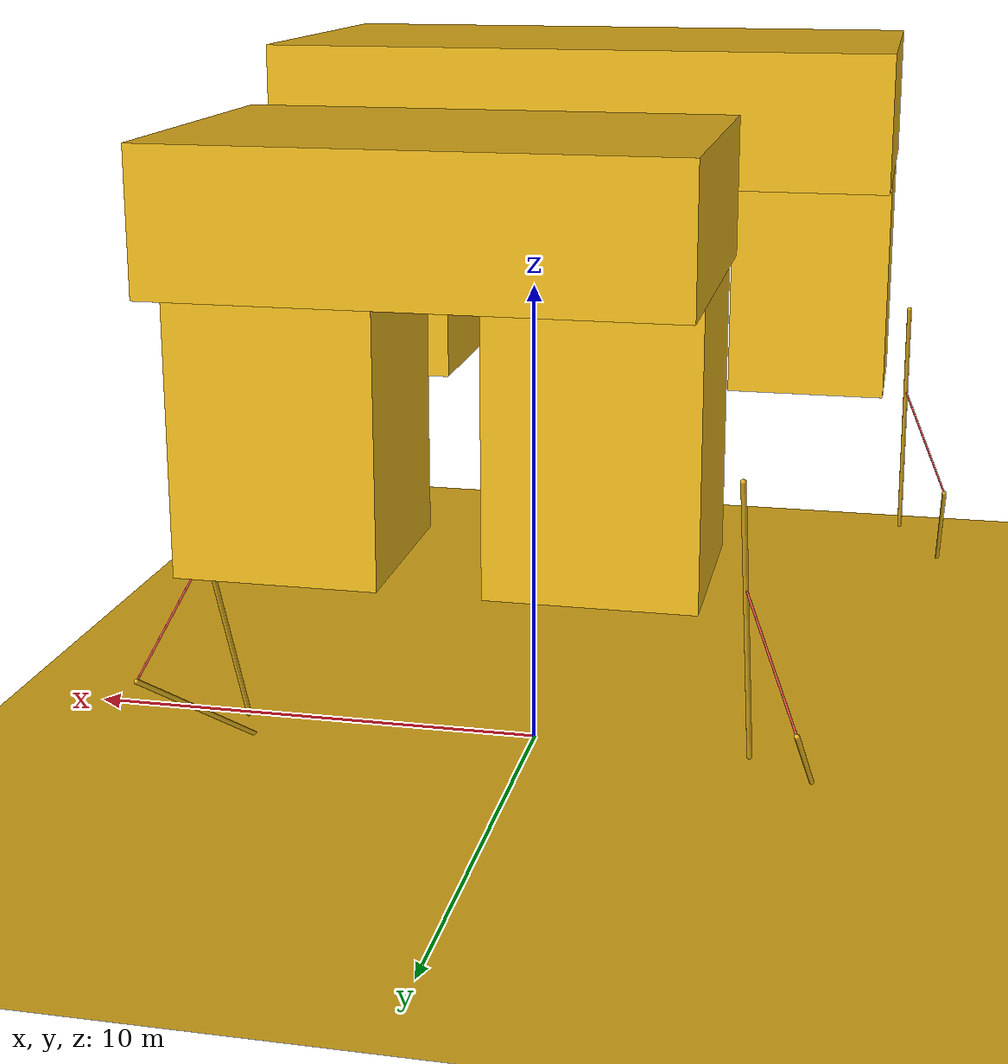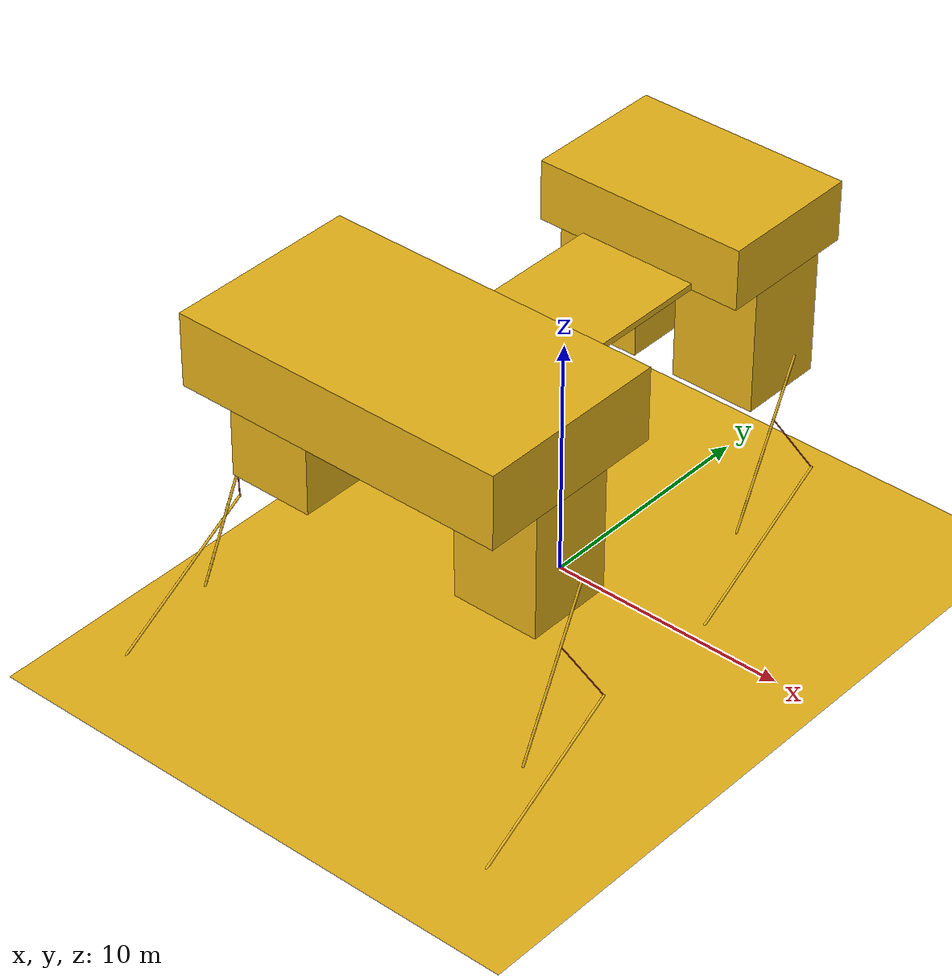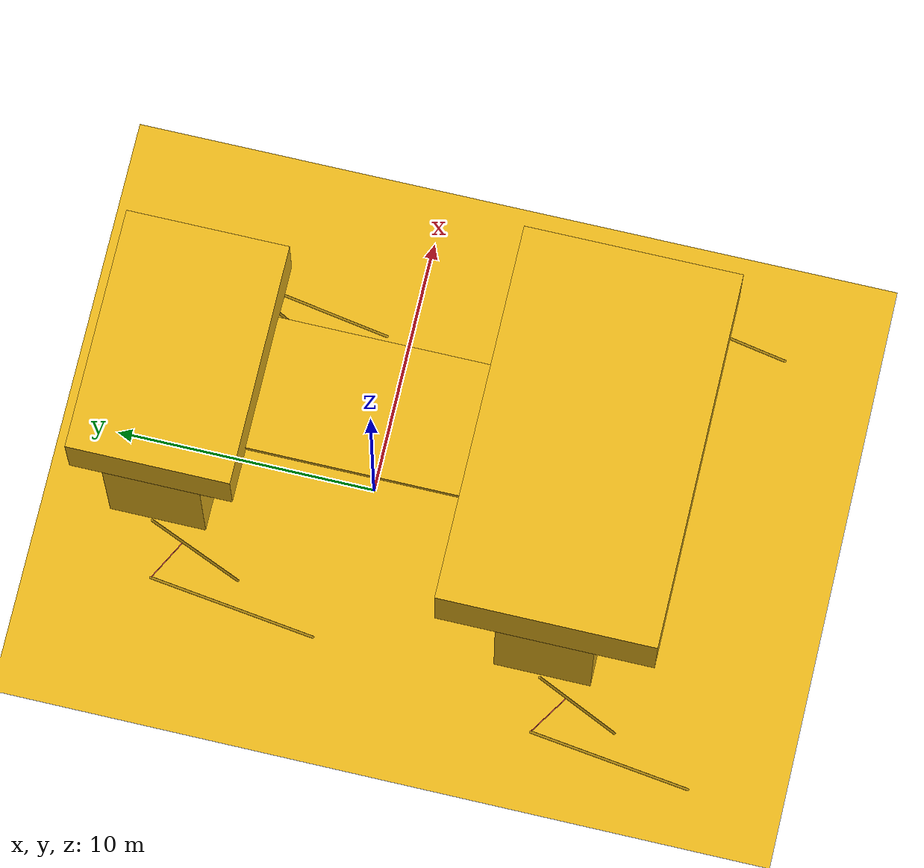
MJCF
<mujoco model="quadruped">
  <compiler angle="degree" coordinate="global" inertiafromgeom="true"/>
  <option gravity="0 0 -98.1"/>
  <default>
    <geom density="1" rgba=".9 .7 .1 1" size="0.05"/>
    <site rgba=".9 .9 .9 1" size="0.005" type="sphere"/>
    <joint axis="1 0 0" limited="true" range="-100 100" solimplimit="0.95 0.95 0.1" type="hinge"/>
    <tendon limited="true" range="0.25 1" rgba=".95 .3 .3 1" stiffness="4000" width="0.02"/>
  </default>
  <asset>
    <texture builtin="gradient" height="128" rgb1=".4 .6 .8" rgb2="0 0 0" type="skybox" width="128"/>
    <texture builtin="flat" height="1278" mark="cross" markrgb="1 1 1" name="texgeom" random="0.01" rgb1="0.8 0.6 0.4" rgb2="0.8 0.6 0.4" type="cube" width="127"/>
    <texture builtin="checker" height="512" name="texplane" rgb1=".2 .3 .4" rgb2=".1 0.15 0.2" type="2d" width="512"/>
    <material name="MatPlane" reflectance="0" texrepeat="1 1" texture="texplane" texuniform="true"/>
    <material name="geom" texture="texgeom" texuniform="true"/>
  </asset>
  <worldbody>
    <geom condim="3" material="MatPlane" name="floor" pos="0 0 0" size="50 50 .125" type="plane"/>
    <body name="torso">
      <geom mass="2500.00000" pos="0.00000 -8.00000 12.98238" size="7.00000 4.00000 1.50000" type="box"/>
      <geom mass="300.00000" pos="0.00000 0.00000 11.60738" size="2.50000 4.00000 0.12500" type="box" name="torso_geom"/>
      <geom mass="1500.00000" pos="0.00000 7.00000 12.73238" size="4.50000 3.00000 1.25000" type="box"/>
      <joint limited="false" name="gravity" type="free"/>
      <site name="sensor_torso" pos="0 0 11.48238"/>
      <body>
        <geom mass="0.067" pos="5.20000 -8.00000 8.95238" size="1.80000 1.80000 2.53000" type="box"/>
        <body>
          <geom fromto="7.51000 -8.00000 8.18238 7.51000 -10.95833 1.83823" type="capsule"/>
          <joint damping="0.2" name="shoulder_1" pos="7.51000 -8.00000 8.18238"/>
          <site name="s1_1" pos="7.51000 -9.05655 5.91661"/>
          <body>
            <geom fromto="8.56000 -7.97226 3.66399 8.56000 -15.22414 -0.77000" type="capsule"/>
            <joint damping="0.2" limited="true" pos="7.51000 -10.95833 1.83823" range="-60 0"/>
            <site name="s1_2" pos="8.56000 -7.97226 3.66399"/>
            <body pos="8.56000 -15.22414 -0.77000">
              <geom friction="1 0.005 0.0001" fromto="8.56000 -15.22414 -0.77000 8.56000 -15.42414 -1.17000" type="capsule"/>
              <site name="sensor_1" pos="8.56000 -15.22414 -0.77000"/>
            </body>
          </body>
        </body>
      </body>
      <body>
        <geom mass="0.067" pos="-5.20000 -8.00000 8.95238" size="1.80000 1.80000 2.53000" type="box"/>
        <body>
          <geom fromto="-7.51000 -8.00000 8.18238 -7.51000 -10.95833 1.83823" type="capsule"/>
          <joint damping="0.2" name="shoulder_2" pos="-7.51000 -8.00000 8.18238"/>
          <site name="s2_1" pos="-7.51000 -9.05655 5.91661"/>
          <body>
            <geom fromto="-8.56000 -7.97226 3.66399 -8.56000 -15.22414 -0.77000" type="capsule"/>
            <joint damping="0.2" limited="true" pos="-7.51000 -10.95833 1.83823" range="-60 0"/>
            <site name="s2_2" pos="-8.56000 -7.97226 3.66399"/>
            <body pos="-8.56000 -15.22414 -0.77000">
              <geom friction="1 0.005 0.0001" fromto="-8.56000 -15.22414 -0.77000 -8.56000 -15.42414 -1.17000" type="capsule"/>
              <site name="sensor_2" pos="-8.56000 -15.22414 -0.77000"/>
            </body>
          </body>
        </body>
      </body>
      <body>
        <geom mass="0.067" pos="2.70000 7.00000 8.95238" size="1.80000 1.80000 2.53000" type="box"/>
        <body>
          <geom fromto="5.01000 7.00000 8.18238 5.01000 4.04167 1.83823" type="capsule"/>
          <joint damping="0.2" name="shoulder_3" pos="5.01000 7.00000 8.18238"/>
          <site name="s3_1" pos="5.01000 5.94345 5.91661"/>
          <body>
            <geom fromto="6.06000 7.02774 3.66399 6.06000 -0.22414 -0.77000" type="capsule"/>
            <joint damping="0.2" limited="true" pos="5.01000 4.04167 1.83823" range="-60 0"/>
            <site name="s3_2" pos="6.06000 7.02774 3.66399"/>
            <body pos="6.06000 -0.22414 -0.77000">
              <geom friction="1 0.005 0.0001" fromto="6.06000 -0.22414 -0.77000 6.06000 -0.42414 -1.17000" type="capsule"/>
              <site name="sensor_3" pos="6.06000 -0.22414 -0.77000"/>
            </body>
          </body>
        </body>
      </body>
      <body>
        <geom mass="0.067" pos="-2.70000 7.00000 8.95238" size="1.80000 1.80000 2.53000" type="box"/>
        <body>
          <geom fromto="-5.01000 7.00000 8.18238 -5.01000 4.04167 1.83823" type="capsule"/>
          <joint damping="0.2" name="shoulder_4" pos="-5.01000 7.00000 8.18238"/>
          <site name="s4_1" pos="-5.01000 5.94345 5.91661"/>
          <body>
            <geom fromto="-6.06000 7.02774 3.66399 -6.06000 -0.22414 -0.77000" type="capsule"/>
            <joint damping="0.2" limited="true" pos="-5.01000 4.04167 1.83823" range="-60 0"/>
            <site name="s4_2" pos="-6.06000 7.02774 3.66399"/>
            <body pos="-6.06000 -0.22414 -0.77000">
              <geom friction="1 0.005 0.0001" fromto="-6.06000 -0.22414 -0.77000 -6.06000 -0.42414 -1.17000" type="capsule"/>
              <site name="sensor_4" pos="-6.06000 -0.22414 -0.77000"/>
            </body>
          </body>
        </body>
      </body>
    </body>
  </worldbody>
  <tendon>
    <spatial range="0.27115 2.71155" stiffness="500">
      <site site="s1_1"/>
      <site site="s1_2"/>
    </spatial>
  </tendon>
  <tendon>
    <spatial range="0.27115 2.71155" stiffness="500">
      <site site="s2_1"/>
      <site site="s2_2"/>
    </spatial>
  </tendon>
  <tendon>
    <spatial range="0.27115 2.71155" stiffness="500">
      <site site="s3_1"/>
      <site site="s3_2"/>
    </spatial>
  </tendon>
  <tendon>
    <spatial range="0.27115 2.71155" stiffness="500">
      <site site="s4_1"/>
      <site site="s4_2"/>
    </spatial>
  </tendon>
  <actuator>
    <position forcelimited="true" forcerange="-50 50" gear="1" joint="shoulder_1" kp="254"/>
    <position forcelimited="true" forcerange="-50 50" gear="1" joint="shoulder_2" kp="254"/>
    <position forcelimited="true" forcerange="-50 50" gear="1" joint="shoulder_3" kp="254"/>
    <position forcelimited="true" forcerange="-50 50" gear="1" joint="shoulder_4" kp="254"/>
  </actuator>
  <sensor>
    <force site="sensor_1"/>
    <force site="sensor_2"/>
    <force site="sensor_3"/>
    <force site="sensor_4"/>
    <accelerometer site="sensor_torso"/>
  </sensor>
</mujoco>
